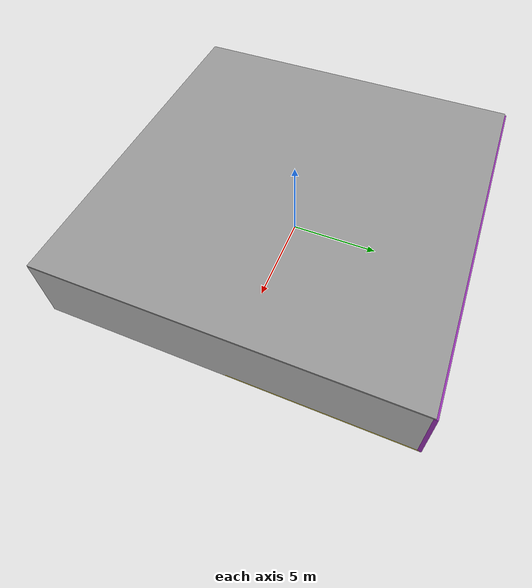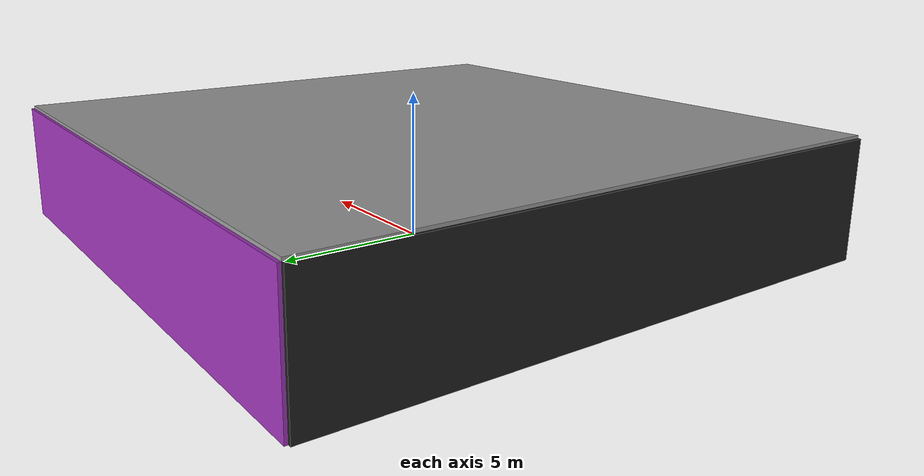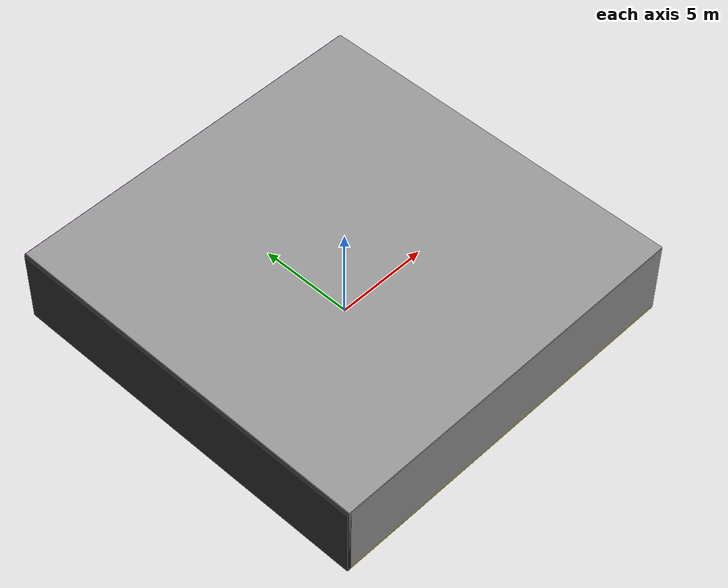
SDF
<sdf version="1.4">
 <world name="default">
  <physics type="ode">
   <max_step_size>0.001</max_step_size>
   <real_time_factor>1</real_time_factor>
   <real_time_update_rate>1000</real_time_update_rate>
   <gravity>0 0 -9.8</gravity>
  </physics>
  <scene><ambient>0.4 0.4 0.4 1</ambient><background>0.7 0.7 0.7 1</background><shadows>1</shadows></scene>
  <model name="Surrounding">
   <static>1</static>
   <link name="Ceiling">
    <collision name="Ceiling_Collision"><geometry><box><size>20 20 0.1</size></box></geometry></collision>
    <visual name="Ceiling_Visual">
     <geometry><box><size>20 20 0.1</size></box></geometry>
     <material>
      <script><uri>file://media/materials/scripts/gazebo.material</uri><name>Gazebo/GreyGradientSky</name></script>
     </material>
    </visual>
    <pose>0 0 4.05 0 0 0</pose>
   </link>
   <link name="Wall_South">
    <collision name="Wall_South_Collision">
     <geometry><box><size>20 0 4</size></box></geometry>
     <pose>0 0 2 0 -0 0</pose>
    </collision>
    <visual name="Wall_South_Visual">
     <pose>0 0 2 0 -0 0</pose>
     <geometry><box><size>20 0 4</size></box></geometry>
     <material>
      <script><uri>file://media/materials/scripts/gazebo.material</uri><name>Gazebo/Grey</name></script>
     </material>
    </visual>
    <velocity_decay><linear>0</linear><angular>0</angular></velocity_decay>
    <pose>0 -10 0 0 -0 0</pose>
   </link>
   <link name="Wall_East">
    <collision name="Wall_21_Collision">
     <geometry><box><size>20 0 4</size></box></geometry>
     <pose>0 0 2 0 -0 0</pose>
    </collision>
    <visual name="Wall_21_Visual">
     <pose>0 0 2 0 -0 0</pose>
     <geometry><box><size>20 0 4</size></box></geometry>
     <material>
      <script><uri>file://media/materials/scripts/gazebo.material</uri><name>Gazebo/PioneerBody</name></script>
     </material>
    </visual>
    <velocity_decay><linear>0</linear><angular>0</angular></velocity_decay>
    <pose>10 0 0 0 -0 1.5708</pose>
   </link>
   <link name="Wall_North">
    <collision name="Wall_22_Collision">
     <geometry><box><size>20 0.2 4</size></box></geometry>
     <pose>0 0 2 0 -0 0</pose>
    </collision>
    <visual name="Wall_22_Visual">
     <pose>0 0 2 0 -0 0</pose>
     <geometry><box><size>20 0.2 4</size></box></geometry>
     <material>
      <script><uri>file://media/materials/scripts/gazebo.material</uri><name>Gazebo/Purple</name></script>
     </material>
    </visual>
    <velocity_decay><linear>0</linear><angular>0</angular></velocity_decay>
    <pose>0 10 0 0 -0 0</pose>
   </link>
   <link name="Wall_West">
    <collision name="Wall_23_Collision">
     <geometry><box><size>20 0.2 4</size></box></geometry>
     <pose>0 0 2 0 -0 0</pose>
    </collision>
    <visual name="Wall_23_Visual">
     <pose>0 0 2 0 -0 0</pose>
     <geometry><box><size>20 0.2 4</size></box></geometry>
     <material>
      <script><uri>file://media/materials/scripts/gazebo.material</uri><name>Gazebo/Black</name></script>
     </material>
    </visual>
    <velocity_decay><linear>0</linear><angular>0</angular></velocity_decay>
    <pose>-10 0 0 0 0 -1.5708</pose>
   </link>
   <link name="Ground_link">
    <collision name="collision">
     <pose>0 0 .05 0 -0 0</pose>
     <geometry><box><size>20 20 0.1</size></box></geometry>
    </collision>
    <visual name="visual">
     <pose>0 0 .05 0 -0 0</pose>
     <geometry><box><size>20 20 0.1</size></box></geometry>
     <material>
      <script><uri>file://media/materials/scripts/gazebo.material</uri><name>Gazebo/ZincYellow</name></script>
     </material>
    </visual>
   </link>
   <static>1</static>
  </model>
  <spherical_coordinates>
   <surface_model>EARTH_WGS84</surface_model>
   <latitude_deg>0</latitude_deg>
   <longitude_deg>0</longitude_deg>
   <elevation>0</elevation>
   <heading_deg>0</heading_deg>
  </spherical_coordinates>
  <light name="lightball_0" type="diffuse">
   <diffuse>0.8 0.8 0.8 1</diffuse>
   <specular>0.2 0.2 0.2 1</specular>
   <attenuation>
    <range>100</range>
    <constant>0.7</constant>
    <linear>0.01</linear>
    <quadratic>0.001</quadratic>
   </attenuation>
   <direction>-0.5 0.1 -0.9</direction>
   <pose>-1.56626545341 6.20440849637 3.40223520151 0 0 0</pose>
  </light>
  <light name="lightball_1" type="diffuse">
   <diffuse>0.8 0.8 0.8 1</diffuse>
   <specular>0.2 0.2 0.2 1</specular>
   <attenuation>
    <range>100</range>
    <constant>0.7</constant>
    <linear>0.01</linear>
    <quadratic>0.001</quadratic>
   </attenuation>
   <direction>-0.5 0.1 -0.9</direction>
   <pose>-5.62815796022 2.24396359186 3.15890600677 0 0 0</pose>
  </light>
  <light name="lightball_2" type="diffuse">
   <diffuse>0.8 0.8 0.8 1</diffuse>
   <specular>0.2 0.2 0.2 1</specular>
   <attenuation>
    <range>100</range>
    <constant>0.7</constant>
    <linear>0.01</linear>
    <quadratic>0.001</quadratic>
   </attenuation>
   <direction>-0.5 0.1 -0.9</direction>
   <pose>-2.0924426979 -6.34921998664 3.82300403234 0 0 0</pose>
  </light>
  <light name="lightball_3" type="diffuse">
   <diffuse>0.8 0.8 0.8 1</diffuse>
   <specular>0.2 0.2 0.2 1</specular>
   <attenuation>
    <range>100</range>
    <constant>0.7</constant>
    <linear>0.01</linear>
    <quadratic>0.001</quadratic>
   </attenuation>
   <direction>-0.5 0.1 -0.9</direction>
   <pose>-7.68710348538 5.26292313876 2.29262172817 0 0 0</pose>
  </light>
  <light name="lightball_4" type="diffuse">
   <diffuse>0.8 0.8 0.8 1</diffuse>
   <specular>0.2 0.2 0.2 1</specular>
   <attenuation>
    <range>100</range>
    <constant>0.7</constant>
    <linear>0.01</linear>
    <quadratic>0.001</quadratic>
   </attenuation>
   <direction>-0.5 0.1 -0.9</direction>
   <pose>8.16687290096 -3.19797494965 3.12231744448 0 0 0</pose>
  </light>
  <light name="lightball_5" type="diffuse">
   <diffuse>0.8 0.8 0.8 1</diffuse>
   <specular>0.2 0.2 0.2 1</specular>
   <attenuation>
    <range>100</range>
    <constant>0.7</constant>
    <linear>0.01</linear>
    <quadratic>0.001</quadratic>
   </attenuation>
   <direction>-0.5 0.1 -0.9</direction>
   <pose>8.05088596493 0.551672715825 1.44383163024 0 0 0</pose>
  </light>
  <light name="lightball_6" type="diffuse">
   <diffuse>0.8 0.8 0.8 1</diffuse>
   <specular>0.2 0.2 0.2 1</specular>
   <attenuation>
    <range>100</range>
    <constant>0.7</constant>
    <linear>0.01</linear>
    <quadratic>0.001</quadratic>
   </attenuation>
   <direction>-0.5 0.1 -0.9</direction>
   <pose>2.36304173509 -5.63061527509 3.08205896961 0 0 0</pose>
  </light>
  <light name="lightball_7" type="diffuse">
   <diffuse>0.8 0.8 0.8 1</diffuse>
   <specular>0.2 0.2 0.2 1</specular>
   <attenuation>
    <range>100</range>
    <constant>0.7</constant>
    <linear>0.01</linear>
    <quadratic>0.001</quadratic>
   </attenuation>
   <direction>-0.5 0.1 -0.9</direction>
   <pose>1.77373071485 7.84476682867 3.74445528105 0 0 0</pose>
  </light>
  <include>
   <uri>model://textured_shapes</uri>
   <pose>-7.52731801215 3.96021743884 0 0 0 0.361106799273</pose>
  </include>
  <include><uri>model://cabinet</uri><pose>-4.39085434415 0.736770792725 0 0 0 1.88415975342</pose></include>
  <include>
   <uri>model://robocup_3Dsim_goal</uri>
   <pose>2.18394565126 -4.35481974757 0 0 0 2.1681408106</pose>
  </include>
  <include>
   <uri>model://construction_cone</uri>
   <pose>5.02202584626 -5.21963062371 0 0 0 2.80922182104</pose>
  </include>
  <include>
   <uri>model://construction_cone</uri>
   <pose>4.13852418485 2.03810935812 0 0 0 0.557571053669</pose>
  </include>
  <include><uri>model://cabinet</uri><pose>7.55158960959 4.38660285738 0 0 0 1.1801346857</pose></include>
 </world>
</sdf>

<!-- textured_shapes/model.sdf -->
<sdf version="1.6">
  <model name="textured_shapes">
    <pose>0 0 0.5 0 0 0</pose>
    <link name="box">
      <pose>0 -1.5 0 0 0 0</pose>
      <collision name="collision">
        <geometry>
          <box>
            <size>1 1 1</size>
          </box>
        </geometry>
      </collision>
      <visual name="visual">
        <geometry>
          <box>
            <size>1 1 1</size>
          </box>
        </geometry>
        <material>
          <script>
            <uri>model://../model_source/models/textured_shapes/materials/scripts</uri>
            <uri>model://../model_source/models/textured_shapes/materials/textures</uri>
            <name>TexturedShape/Squares</name>
          </script>
        </material>
      </visual>
    </link>
    <link name="sphere">
      <collision name="collision">
        <geometry>
          <sphere>
            <radius>0.5</radius>
          </sphere>
        </geometry>
      </collision>
      <visual name="visual">
        <geometry>
          <sphere>
            <radius>0.5</radius>
          </sphere>
        </geometry>
        <material>
          <script>
            <uri>model://../model_source/models/textured_shapes/materials/scripts</uri>
            <uri>model://../model_source/models/textured_shapes/materials/textures</uri>
            <name>TexturedShape/Squares</name>
          </script>
        </material>
      </visual>
    </link>
    <link name="cylinder">
      <pose>0 1.5 0 0 0 0</pose>
      <collision name="collision">
        <geometry>
          <cylinder>
            <radius>0.5</radius>
            <length>1</length>
          </cylinder>
        </geometry>
      </collision>
      <visual name="visual">
        <geometry>
          <cylinder>
            <radius>0.5</radius>
            <length>1</length>
          </cylinder>
        </geometry>
        <material>
          <script>
            <uri>model://../model_source/models/textured_shapes/materials/scripts</uri>
            <uri>model://../model_source/models/textured_shapes/materials/textures</uri>
            <name>TexturedShape/Squares</name>
          </script>
        </material>
      </visual>
    </link>
  </model>
</sdf>

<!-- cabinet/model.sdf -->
<sdf version="1.5">
  <model name="cabinet">
    <static>true</static>
    <link name="cabinet_bottom_plate">
      <inertial>
        <pose>0 0 -1 0 0 0</pose>
        <inertia>
          <ixx>2.050000</ixx>
          <ixy>0</ixy>
          <ixz>0</ixz>
          <iyy>2.050000</iyy>
          <iyz>0</iyz>
          <izz>2.050000</izz>
        </inertia>
        <mass>25.000000</mass>
      </inertial>
      <collision name="cabinet_bottom_plate_geom">
        <pose>0 0 0.010000 0 0 0</pose>
        <geometry>
          <box>
            <size>0.450000 0.450000 0.020000</size>
          </box>
        </geometry>
      </collision>
      <visual name="cabinet_bottom_plate_geom_visual">
        <pose>0 0 0.010000 0 0 0</pose>
        <geometry>
          <box>
            <size>0.450000 0.450000 0.020000</size>
          </box>
        </geometry>
        <material>
          <script>
            <uri>model://media/materials/scripts/gazebo.material</uri>
            <name>Gazebo/Wood</name>
          </script>
        </material>
      </visual>
      <collision name="cabinet_bottom_plate_geom_cabinet_back_plate">
        <pose>0.235000 0 0.510000 0 0 0</pose>
        <geometry>
          <box>
            <size>0.020000 0.450000 1.020000</size>
          </box>
        </geometry>
      </collision>
      <visual name="cabinet_bottom_plate_geom_cabinet_back_plate_visual">
        <pose>0.235000 0 0.510000 0 0 0</pose>
        <geometry>
          <box>
            <size>0.020000 0.450000 1.020000</size>
          </box>
        </geometry>
        <material>
          <script>
            <uri>model://media/materials/scripts/gazebo.material</uri>
            <name>Gazebo/Wood</name>
          </script>
        </material>
      </visual>
      <collision name="cabinet_bottom_plate_geom_cabinet_left_plate">
        <pose>0 0.235000 0.510000 0 0 0</pose>
        <geometry>
          <box>
            <size>0.450000 0.020000 1.020000</size>
          </box>
        </geometry>
      </collision>
      <visual name="cabinet_bottom_plate_geom_cabinet_left_plate_visual">
        <pose>0 0.235000 0.510000 0 0 0</pose>
        <geometry>
          <box>
            <size>0.450000 0.020000 1.020000</size>
          </box>
        </geometry>
        <material>
          <script>
            <uri>model://media/materials/scripts/gazebo.material</uri>
            <name>Gazebo/Wood</name>
          </script>
        </material>
      </visual>
      <collision name="cabinet_bottom_plate_geom_cabinet_middle_plate">
        <pose>0 0 0.510000 0 0 0</pose>
        <geometry>
          <box>
            <size>0.450000 0.450000 0.020000</size>
          </box>
        </geometry>
      </collision>
      <visual name="cabinet_bottom_plate_geom_cabinet_middle_plate_visual">
        <pose>0 0 0.510000 0 0 0</pose>
        <geometry>
          <box>
            <size>0.450000 0.450000 0.020000</size>
          </box>
        </geometry>
        <material>
          <script>
            <uri>model://media/materials/scripts/gazebo.material</uri>
            <name>Gazebo/Wood</name>
          </script>
        </material>
      </visual>
      <collision name="cabinet_bottom_plate_geom_cabinet_right_plate">
        <pose>0 -0.235000 0.510000 0 0 0</pose>
        <geometry>
          <box>
            <size>0.450000 0.020000 1.020000</size>
          </box>
        </geometry>
      </collision>
      <visual name="cabinet_bottom_plate_geom_cabinet_right_plate_visual">
        <pose>0 -0.235000 0.510000 0 0 0</pose>
        <geometry>
          <box>
            <size>0.450000 0.020000 1.020000</size>
          </box>
        </geometry>
        <material>
          <script>
            <uri>model://media/materials/scripts/gazebo.material</uri>
            <name>Gazebo/Wood</name>
          </script>
        </material>
      </visual>
      <collision name="cabinet_bottom_plate_geom_cabinet_top_plate">
        <pose>0 0 1.010000 0 0 0</pose>
        <geometry>
          <box>
            <size>0.450000 0.450000 0.020000</size>
          </box>
        </geometry>
      </collision>
      <visual name="cabinet_bottom_plate_geom_cabinet_top_plate_visual">
        <pose>0 0 1.010000 0 0 0</pose>
        <geometry>
          <box>
            <size>0.450000 0.450000 0.020000</size>
          </box>
        </geometry>
        <material>
          <script>
            <uri>model://media/materials/scripts/gazebo.material</uri>
            <name>Gazebo/Wood</name>
          </script>
        </material>
      </visual>
    </link>
  </model>
</sdf>

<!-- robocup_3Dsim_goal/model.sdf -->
<sdf version="1.5">
  <model name="robocup_3d_goal">
    <static>true</static>
    <link name="left_post">
      <pose>0 1.05 0.45 0 0 0</pose>
      <collision name="collision">
        <geometry>
          <cylinder>
            <radius>0.05</radius>
            <length>0.9</length>
          </cylinder>
        </geometry>
      </collision>
      <visual name="visual">
        <geometry>
          <cylinder>
            <radius>0.05</radius>
            <length>0.9</length>
          </cylinder>
        </geometry>
        <material>
          <script>
            <uri>file://media/materials/scripts/gazebo.material</uri>
            <name>Gazebo/ZincYellow</name>
          </script>
        </material>
      </visual>
    </link>
    <link name="left_support_horiz_lower">
      <pose>0.30 1.05 0.01 0 0 0</pose>
      <collision name="collision">
        <geometry>
          <box>
            <size>0.50 0.02 0.02</size>
          </box>
        </geometry>
      </collision>
      <visual name="visual">
        <geometry>
          <box>
            <size>0.50 0.02 0.02</size>
          </box>
        </geometry>
        <material>
          <script>
            <uri>file://media/materials/scripts/gazebo.material</uri>
            <name>Gazebo/White</name>
          </script>
        </material>
      </visual>
    </link>
    <link name="left_support_horiz_upper">
      <pose>0.30 1.05 0.79 0 0 0</pose>
      <collision name="collision">
        <geometry>
          <box>
            <size>0.50 0.02 0.02</size>
          </box>
        </geometry>
      </collision>
      <visual name="visual">
        <geometry>
          <box>
            <size>0.50 0.02 0.02</size>
          </box>
        </geometry>
        <material>
          <script>
            <uri>file://media/materials/scripts/gazebo.material</uri>
            <name>Gazebo/White</name>
          </script>
        </material>
      </visual>
    </link>
    <link name="left_support_vertical">
      <pose>0.56 1.05 0.4 0 1.5708 0</pose>
      <collision name="collision">
        <geometry>
          <box>
            <size>0.80 0.02 0.02</size>
          </box>
        </geometry>
      </collision>
      <visual name="visual">
        <geometry>
          <box>
            <size>0.80 0.02 0.02</size>
          </box>
        </geometry>
        <material>
          <script>
            <uri>file://media/materials/scripts/gazebo.material</uri>
            <name>Gazebo/White</name>
          </script>
        </material>
      </visual>
    </link>
    <link name="right_support_horiz_lower">
      <pose>0.30 -1.05 0.01 0 0 0</pose>
      <collision name="collision">
        <geometry>
          <box>
            <size>0.50 0.02 0.02</size>
          </box>
        </geometry>
      </collision>
      <visual name="visual">
        <geometry>
          <box>
            <size>0.50 0.02 0.02</size>
          </box>
        </geometry>
        <material>
          <script>
            <uri>file://media/materials/scripts/gazebo.material</uri>
            <name>Gazebo/White</name>
          </script>
        </material>
      </visual>
    </link>
    <link name="right_support_horiz_upper">
      <pose>0.30 -1.05 0.79 0 0 0</pose>
      <collision name="collision">
        <geometry>
          <box>
            <size>0.50 0.02 0.02</size>
          </box>
        </geometry>
      </collision>
      <visual name="visual">
        <geometry>
          <box>
            <size>0.50 0.02 0.02</size>
          </box>
        </geometry>
        <material>
          <script>
            <uri>file://media/materials/scripts/gazebo.material</uri>
            <name>Gazebo/White</name>
          </script>
        </material>
      </visual>
    </link>
    <link name="right_support_vertical">
      <pose>0.56 -1.05 0.4 0 1.5708 0</pose>
      <collision name="collision">
        <geometry>
          <box>
            <size>0.80 0.02 0.02</size>
          </box>
        </geometry>
      </collision>
      <visual name="visual">
        <geometry>
          <box>
            <size>0.80 0.02 0.02</size>
          </box>
        </geometry>
        <material>
          <script>
            <uri>file://media/materials/scripts/gazebo.material</uri>
            <name>Gazebo/White</name>
          </script>
        </material>
      </visual>
    </link>
    <link name="center_support_horiz_lower">
      <pose>0.56 0 0.01 0 1.5708 0</pose>
      <collision name="collision">
        <geometry>
          <box>
            <size>0.02 2.08 0.02</size>
          </box>
        </geometry>
      </collision>
      <visual name="visual">
        <geometry>
          <box>
            <size>0.02 2.08 0.02</size>
          </box>
        </geometry>
        <material>
          <script>
            <uri>file://media/materials/scripts/gazebo.material</uri>
            <name>Gazebo/White</name>
          </script>
        </material>
      </visual>
    </link>
    <link name="center_support_horiz_upper">
      <pose>0.56 0 0.79 0 1.5708 0</pose>
      <collision name="collision">
        <geometry>
          <box>
            <size>0.02 2.08 0.02</size>
          </box>
        </geometry>
      </collision>
      <visual name="visual">
        <geometry>
          <box>
            <size>0.02 2.08 0.02</size>
          </box>
        </geometry>
        <material>
          <script>
            <uri>file://media/materials/scripts/gazebo.material</uri>
            <name>Gazebo/White</name>
          </script>
        </material>
      </visual>
    </link>
    <link name="right_post">
      <pose>0 -1.05 0.45 0 0 0</pose>
      <collision name="collision">
        <geometry>
          <cylinder>
            <radius>0.05</radius>
            <length>0.9</length>
          </cylinder>
        </geometry>
      </collision>
      <visual name="visual">
        <geometry>
          <cylinder>
            <radius>0.05</radius>
            <length>0.9</length>
          </cylinder>
        </geometry>
        <material>
          <script>
            <uri>file://media/materials/scripts/gazebo.material</uri>
            <name>Gazebo/ZincYellow</name>
          </script>
        </material>
      </visual>
    </link>
    <link name="crossbar">
      <pose>0 0 0.85 1.57 1.57 0</pose>
      <collision name="collision">
        <geometry>
          <cylinder>
            <radius>0.05</radius>
            <length>2.0</length>
          </cylinder>
        </geometry>
      </collision>
      <visual name="visual">
        <geometry>
          <cylinder>
            <radius>0.05</radius>
            <length>2.0</length>
          </cylinder>
        </geometry>
        <material>
          <script>
            <uri>file://media/materials/scripts/gazebo.material</uri>
            <name>Gazebo/ZincYellow</name>
          </script>
        </material>
      </visual>
    </link>
    <link name="center_net">
      <pose>0.56 0 0.40 0 0 0</pose>
      <collision name="collision">
        <geometry>
          <box>
            <size>0.01 2.1 0.80</size>
          </box>
        </geometry>
      </collision>
      <visual name="visual">
        <geometry>
          <box>
            <size>0.01 2.1 0.80</size>
          </box>
        </geometry>
        <material>
          <script>
            <uri>model://../model_source/models/robocup09_spl_field/materials/scripts/</uri>
            <uri>model://../model_source/models/robocup09_spl_field/materials/textures/</uri>
            <name>RoboCup/Net</name>
          </script>
        </material>
      </visual>
    </link>
    <link name="left_net">
      <pose>0.30 1.05 0.40 0 0 0</pose>
      <collision name="collision">
        <geometry>
          <box>
            <size>0.50 0.01 0.76</size>
          </box>
        </geometry>
      </collision>
      <visual name="visual">
        <geometry>
          <box>
            <size>0.50 0.01 0.76</size>
          </box>
        </geometry>
        <material>
          <script>
            <uri>model://../model_source/models/robocup09_spl_field/materials/scripts/</uri>
            <uri>model://../model_source/models/robocup09_spl_field/materials/textures/</uri>
            <name>RoboCup/Net</name>
          </script>
        </material>
      </visual>
    </link>
    <link name="right_net">
      <pose>0.30 -1.05 0.40 0 0 0</pose>
      <collision name="collision">
        <geometry>
          <box>
            <size>0.50 0.01 0.76</size>
          </box>
        </geometry>
      </collision>
      <visual name="visual">
        <geometry>
          <box>
            <size>0.50 0.01 0.76</size>
          </box>
        </geometry>
        <material>
          <script>
            <uri>model://../model_source/models/robocup09_spl_field/materials/scripts/</uri>
            <uri>model://../model_source/models/robocup09_spl_field/materials/textures/</uri>
            <name>RoboCup/Net</name>
          </script>
        </material>
      </visual>
    </link>
  </model>
</sdf>

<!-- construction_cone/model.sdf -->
<sdf version="1.5">
  <model name="Construction Cone">
    <link name="link">
      <collision name="collision">
        <geometry>
          <mesh>
            <scale>10 10 10</scale>
            <uri>file://isr-testbed/construction_cone/meshes/construction_cone.dae</uri>
          </mesh>
        </geometry>
      </collision>
      <visual name="visual">
        <geometry>
          <mesh>
            <scale>10 10 10</scale>
            <uri>file://isr-testbed/construction_cone/meshes/construction_cone.dae</uri>
          </mesh>
        </geometry>
      </visual>
    </link>
  </model>
</sdf>
